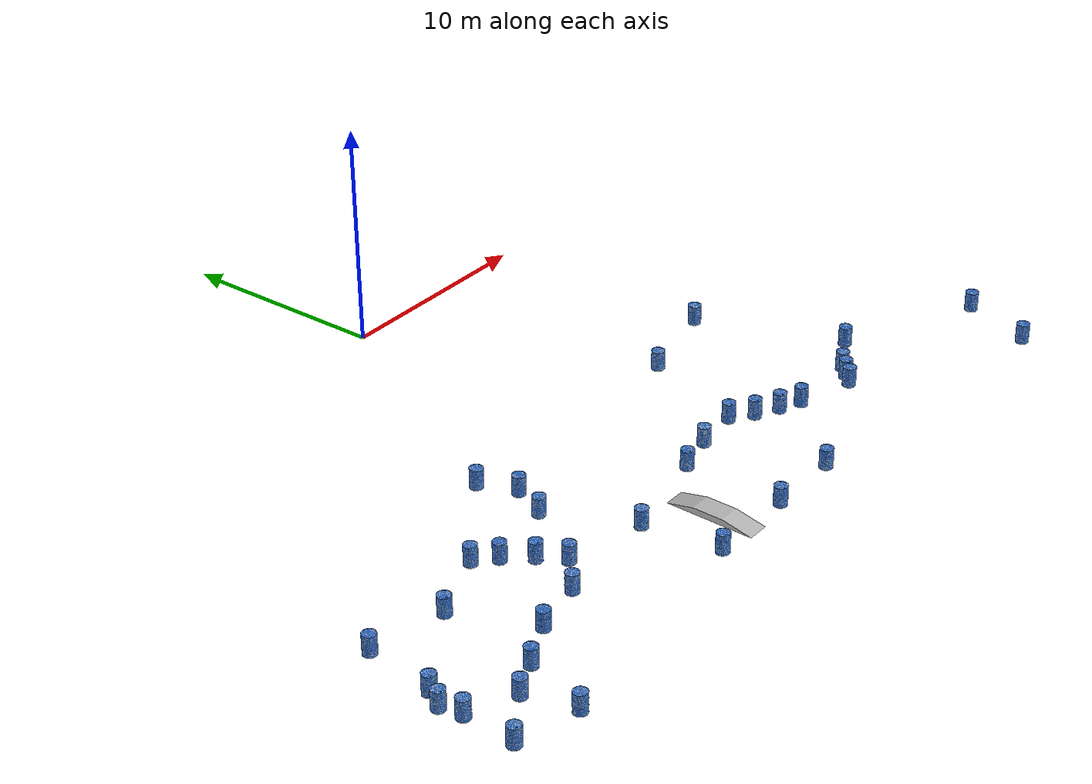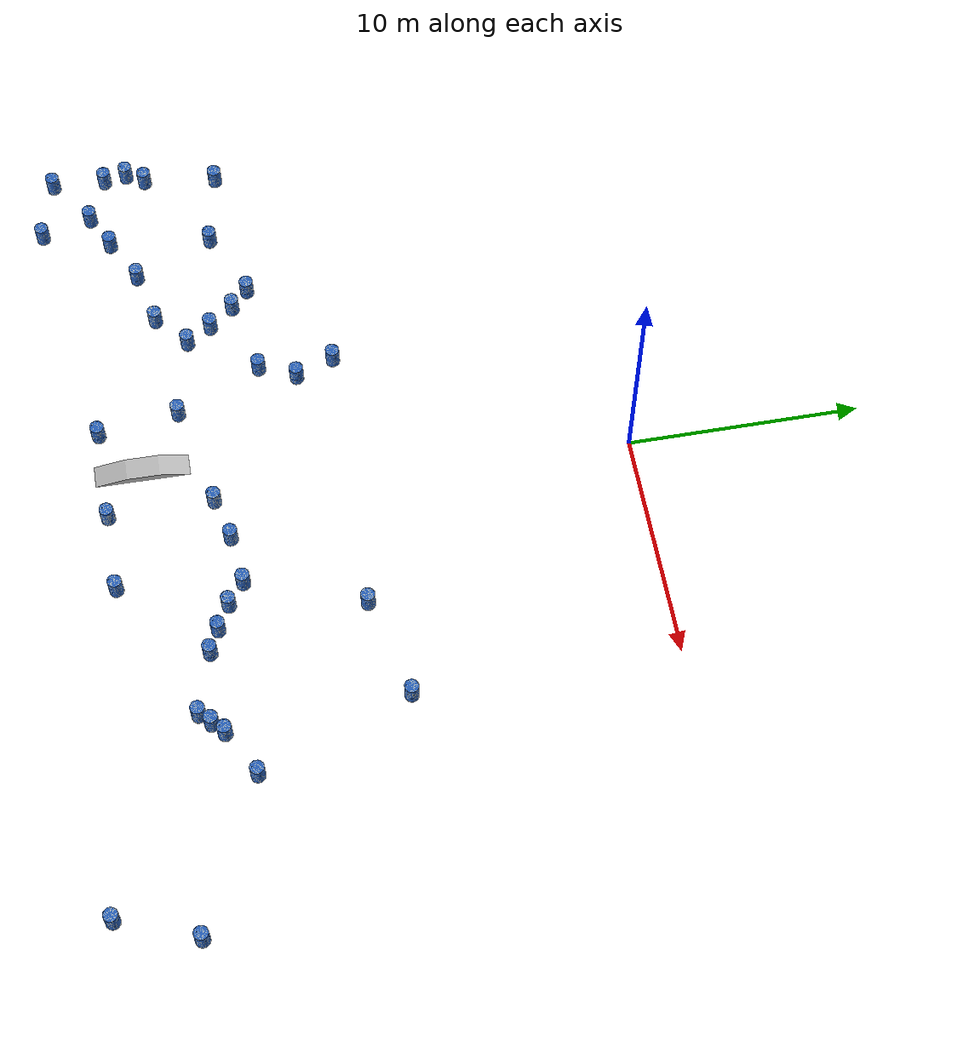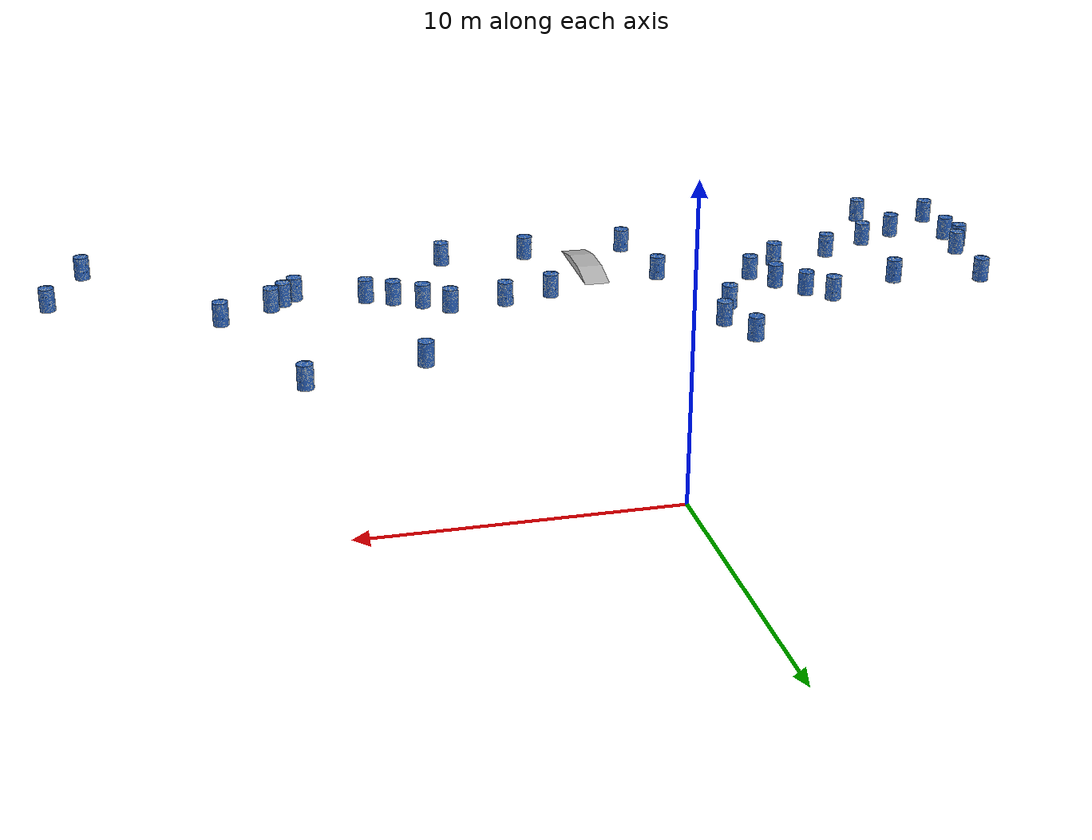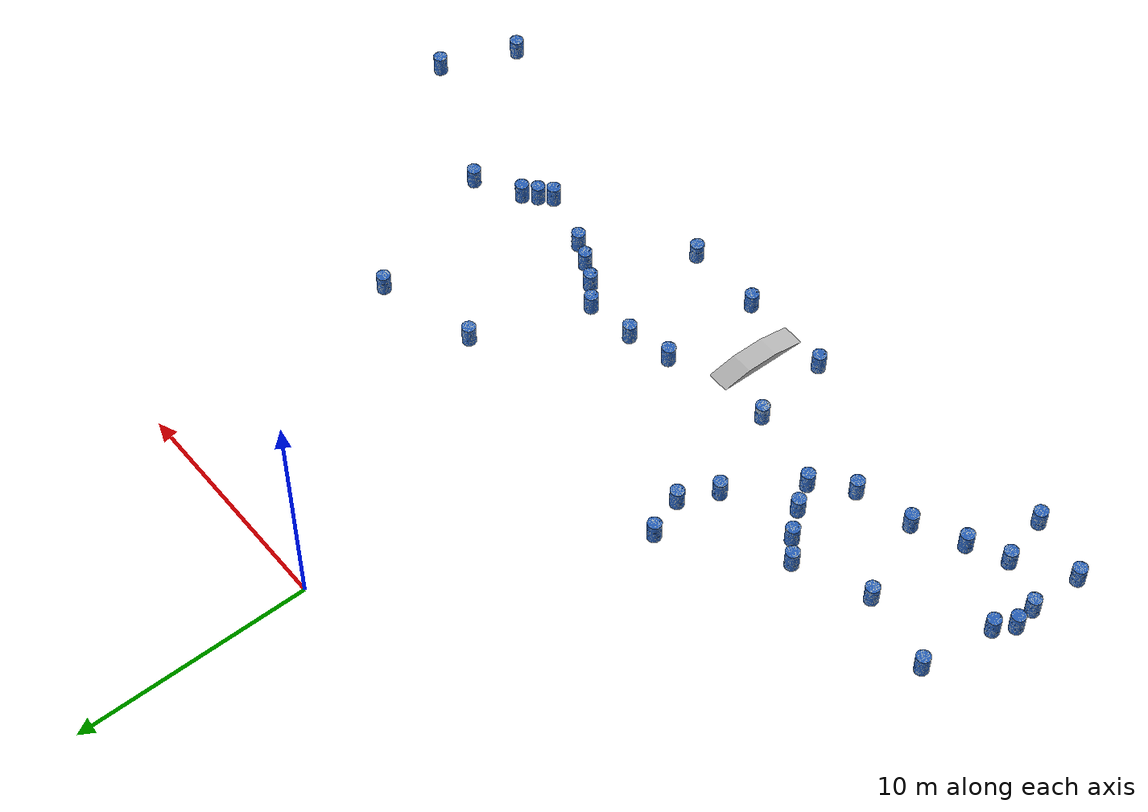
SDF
<sdf version="1.6">
 <world name="default">
  <model name="ramp_0">
   <static>1</static>
   <link name="link">
    <collision name="collision">
     <geometry><mesh><uri>model://ramp/meshes/ramp.dae</uri><scale>1 1 1</scale></mesh></geometry>
     <surface><friction><ode><mu>100</mu><mu2>50</mu2></ode></friction></surface>
    </collision>
    <visual name="visual">
     <geometry><mesh><uri>model://ramp/meshes/ramp.dae</uri><scale>1 1 1</scale></mesh></geometry>
    </visual>
   </link>
   <pose>-0.758109 -20.5547 0 0 0 -0.011926</pose>
  </model>
  <model name="barrels_low_16">
   <link name="link">
    <inertial>
     <mass>500</mass>
     <inertia><ixx>51.2096</ixx><iyy>51.2096</iyy><izz>25</izz><ixy>0</ixy><ixz>0</ixz><iyz>0</iyz></inertia>
    </inertial>
    <collision name="collision">
     <pose>0 0 0.5 0 -0 0</pose>
     <geometry><cylinder><radius>0.3</radius><length>1</length></cylinder></geometry>
    </collision>
    <visual name="visual">
     <geometry><mesh><uri>model://barrel/meshes/barrel.dae</uri><scale>1 1 1</scale></mesh></geometry>
    </visual>
   </link>
   <pose>-6.646 -12.089 -1.9e-05 0 -0 0</pose>
  </model>
  <model name="barrels_low_17">
   <link name="link">
    <inertial>
     <mass>500</mass>
     <inertia><ixx>51.2096</ixx><iyy>51.2096</iyy><izz>25</izz><ixy>0</ixy><ixz>0</ixz><iyz>0</iyz></inertia>
    </inertial>
    <collision name="collision">
     <pose>0 0 0.5 0 -0 0</pose>
     <geometry><cylinder><radius>0.3</radius><length>1</length></cylinder></geometry>
    </collision>
    <visual name="visual">
     <geometry><mesh><uri>model://barrel/meshes/barrel.dae</uri><scale>1 1 1</scale></mesh></geometry>
    </visual>
   </link>
   <pose>-6.015 -13.752 -1.9e-05 0 -0 0</pose>
  </model>
  <model name="barrels_low_24">
   <link name="link">
    <inertial>
     <mass>500</mass>
     <inertia><ixx>51.2096</ixx><iyy>51.2096</iyy><izz>25</izz><ixy>0</ixy><ixz>0</ixz><iyz>0</iyz></inertia>
    </inertial>
    <collision name="collision">
     <pose>0 0 0.5 0 -0 0</pose>
     <geometry><cylinder><radius>0.3</radius><length>1</length></cylinder></geometry>
    </collision>
    <visual name="visual">
     <geometry><mesh><uri>model://barrel/meshes/barrel.dae</uri><scale>1 1 1</scale></mesh></geometry>
    </visual>
   </link>
   <pose>18.36 -20.697 -1.9e-05 0 -0 0</pose>
  </model>
  <model name="barrels_low_25">
   <link name="link">
    <inertial>
     <mass>500</mass>
     <inertia><ixx>51.2096</ixx><iyy>51.2096</iyy><izz>25</izz><ixy>0</ixy><ixz>0</ixz><iyz>0</iyz></inertia>
    </inertial>
    <collision name="collision">
     <pose>0 0 0.5 0 -0 0</pose>
     <geometry><cylinder><radius>0.3</radius><length>1</length></cylinder></geometry>
    </collision>
    <visual name="visual">
     <geometry><mesh><uri>model://barrel/meshes/barrel.dae</uri><scale>1 1 1</scale></mesh></geometry>
    </visual>
   </link>
   <pose>17.072 -23.944 -1.9e-05 0 -0 0</pose>
  </model>
  <model name="barrels_low_26">
   <link name="link">
    <inertial>
     <mass>500</mass>
     <inertia><ixx>51.2096</ixx><iyy>51.2096</iyy><izz>25</izz><ixy>0</ixy><ixz>0</ixz><iyz>0</iyz></inertia>
    </inertial>
    <collision name="collision">
     <pose>0 0 0.5 0 -0 0</pose>
     <geometry><cylinder><radius>0.3</radius><length>1</length></cylinder></geometry>
    </collision>
    <visual name="visual">
     <geometry><mesh><uri>model://barrel/meshes/barrel.dae</uri><scale>1 1 1</scale></mesh></geometry>
    </visual>
   </link>
   <pose>12.114 -17.789 -1.9e-05 0 -0 0</pose>
  </model>
  <model name="barrels_low_27">
   <link name="link">
    <inertial>
     <mass>500</mass>
     <inertia><ixx>51.2096</ixx><iyy>51.2096</iyy><izz>25</izz><ixy>0</ixy><ixz>0</ixz><iyz>0</iyz></inertia>
    </inertial>
    <collision name="collision">
     <pose>0 0 0.5 0 -0 0</pose>
     <geometry><cylinder><radius>0.3</radius><length>1</length></cylinder></geometry>
    </collision>
    <visual name="visual">
     <geometry><mesh><uri>model://barrel/meshes/barrel.dae</uri><scale>1 1 1</scale></mesh></geometry>
    </visual>
   </link>
   <pose>10.155 -18.839 -1.9e-05 0 -0 0</pose>
  </model>
  <model name="barrels_low_28">
   <link name="link">
    <inertial>
     <mass>500</mass>
     <inertia><ixx>51.2096</ixx><iyy>51.2096</iyy><izz>25</izz><ixy>0</ixy><ixz>0</ixz><iyz>0</iyz></inertia>
    </inertial>
    <collision name="collision">
     <pose>0 0 0.5 0 -0 0</pose>
     <geometry><cylinder><radius>0.3</radius><length>1</length></cylinder></geometry>
    </collision>
    <visual name="visual">
     <geometry><mesh><uri>model://barrel/meshes/barrel.dae</uri><scale>1 1 1</scale></mesh></geometry>
    </visual>
   </link>
   <pose>9.652 -19.311 -1.9e-05 0 -0 0</pose>
  </model>
  <model name="barrels_low_29">
   <link name="link">
    <inertial>
     <mass>500</mass>
     <inertia><ixx>51.2096</ixx><iyy>51.2096</iyy><izz>25</izz><ixy>0</ixy><ixz>0</ixz><iyz>0</iyz></inertia>
    </inertial>
    <collision name="collision">
     <pose>0 0 0.5 0 -0 0</pose>
     <geometry><cylinder><radius>0.3</radius><length>1</length></cylinder></geometry>
    </collision>
    <visual name="visual">
     <geometry><mesh><uri>model://barrel/meshes/barrel.dae</uri><scale>1 1 1</scale></mesh></geometry>
    </visual>
   </link>
   <pose>9.181 -19.775 -1.9e-05 0 -0 0</pose>
  </model>
  <model name="barrels_low_30">
   <link name="link">
    <inertial>
     <mass>500</mass>
     <inertia><ixx>51.2096</ixx><iyy>51.2096</iyy><izz>25</izz><ixy>0</ixy><ixz>0</ixz><iyz>0</iyz></inertia>
    </inertial>
    <collision name="collision">
     <pose>0 0 0.5 0 -0 0</pose>
     <geometry><cylinder><radius>0.3</radius><length>1</length></cylinder></geometry>
    </collision>
    <visual name="visual">
     <geometry><mesh><uri>model://barrel/meshes/barrel.dae</uri><scale>1 1 1</scale></mesh></geometry>
    </visual>
   </link>
   <pose>9.742 -11.323 -1.9e-05 0 -0 0</pose>
  </model>
  <model name="barrels_low_31">
   <link name="link">
    <inertial>
     <mass>500</mass>
     <inertia><ixx>51.2096</ixx><iyy>51.2096</iyy><izz>25</izz><ixy>0</ixy><ixz>0</ixz><iyz>0</iyz></inertia>
    </inertial>
    <collision name="collision">
     <pose>0 0 0.5 0 -0 0</pose>
     <geometry><cylinder><radius>0.3</radius><length>1</length></cylinder></geometry>
    </collision>
    <visual name="visual">
     <geometry><mesh><uri>model://barrel/meshes/barrel.dae</uri><scale>1 1 1</scale></mesh></geometry>
    </visual>
   </link>
   <pose>5.393 -12.401 -1.9e-05 0 -0 0</pose>
  </model>
  <model name="barrels_low_51">
   <link name="link">
    <inertial>
     <mass>500</mass>
     <inertia><ixx>51.2096</ixx><iyy>51.2096</iyy><izz>25</izz><ixy>0</ixy><ixz>0</ixz><iyz>0</iyz></inertia>
    </inertial>
    <collision name="collision">
     <pose>0 0 0.5 0 -0 0</pose>
     <geometry><cylinder><radius>0.3</radius><length>1</length></cylinder></geometry>
    </collision>
    <visual name="visual">
     <geometry><mesh><uri>model://barrel/meshes/barrel.dae</uri><scale>1 1 1</scale></mesh></geometry>
    </visual>
   </link>
   <pose>-6.728 -15.316 -1.9e-05 0 -0 0</pose>
  </model>
  <model name="barrels_low_52">
   <link name="link">
    <inertial>
     <mass>500</mass>
     <inertia><ixx>51.2096</ixx><iyy>51.2096</iyy><izz>25</izz><ixy>0</ixy><ixz>0</ixz><iyz>0</iyz></inertia>
    </inertial>
    <collision name="collision">
     <pose>0 0 0.5 0 -0 0</pose>
     <geometry><cylinder><radius>0.3</radius><length>1</length></cylinder></geometry>
    </collision>
    <visual name="visual">
     <geometry><mesh><uri>model://barrel/meshes/barrel.dae</uri><scale>1 1 1</scale></mesh></geometry>
    </visual>
   </link>
   <pose>-10.898 -15.301 -1.9e-05 0 -0 0</pose>
  </model>
  <model name="barrels_low_53">
   <link name="link">
    <inertial>
     <mass>500</mass>
     <inertia><ixx>51.2096</ixx><iyy>51.2096</iyy><izz>25</izz><ixy>0</ixy><ixz>0</ixz><iyz>0</iyz></inertia>
    </inertial>
    <collision name="collision">
     <pose>0 0 0.5 0 -0 0</pose>
     <geometry><cylinder><radius>0.3</radius><length>1</length></cylinder></geometry>
    </collision>
    <visual name="visual">
     <geometry><mesh><uri>model://barrel/meshes/barrel.dae</uri><scale>1 1 1</scale></mesh></geometry>
    </visual>
   </link>
   <pose>-10.073 -16.053 -1.9e-05 0 -0 0</pose>
  </model>
  <model name="barrels_low_54">
   <link name="link">
    <inertial>
     <mass>500</mass>
     <inertia><ixx>51.2096</ixx><iyy>51.2096</iyy><izz>25</izz><ixy>0</ixy><ixz>0</ixz><iyz>0</iyz></inertia>
    </inertial>
    <collision name="collision">
     <pose>0 0 0.5 0 -0 0</pose>
     <geometry><cylinder><radius>0.3</radius><length>1</length></cylinder></geometry>
    </collision>
    <visual name="visual">
     <geometry><mesh><uri>model://barrel/meshes/barrel.dae</uri><scale>1 1 1</scale></mesh></geometry>
    </visual>
   </link>
   <pose>-9.219 -17.113 -1.9e-05 0 -0 0</pose>
  </model>
  <model name="barrels_low_55">
   <link name="link">
    <inertial>
     <mass>500</mass>
     <inertia><ixx>51.2096</ixx><iyy>51.2096</iyy><izz>25</izz><ixy>0</ixy><ixz>0</ixz><iyz>0</iyz></inertia>
    </inertial>
    <collision name="collision">
     <pose>0 0 0.5 0 -0 0</pose>
     <geometry><cylinder><radius>0.3</radius><length>1</length></cylinder></geometry>
    </collision>
    <visual name="visual">
     <geometry><mesh><uri>model://barrel/meshes/barrel.dae</uri><scale>1 1 1</scale></mesh></geometry>
    </visual>
   </link>
   <pose>-8.555 -18.197 -1.9e-05 0 -0 0</pose>
  </model>
  <model name="barrels_low_60">
   <link name="link">
    <inertial>
     <mass>500</mass>
     <inertia><ixx>51.2096</ixx><iyy>51.2096</iyy><izz>25</izz><ixy>0</ixy><ixz>0</ixz><iyz>0</iyz></inertia>
    </inertial>
    <collision name="collision">
     <pose>0 0 0.5 0 -0 0</pose>
     <geometry><cylinder><radius>0.3</radius><length>1</length></cylinder></geometry>
    </collision>
    <visual name="visual">
     <geometry><mesh><uri>model://barrel/meshes/barrel.dae</uri><scale>1 1 1</scale></mesh></geometry>
    </visual>
   </link>
   <pose>-16.001 -21.75 -1.9e-05 0 -0 0</pose>
  </model>
  <model name="barrels_low_61">
   <link name="link">
    <inertial>
     <mass>500</mass>
     <inertia><ixx>51.2096</ixx><iyy>51.2096</iyy><izz>25</izz><ixy>0</ixy><ixz>0</ixz><iyz>0</iyz></inertia>
    </inertial>
    <collision name="collision">
     <pose>0 0 0.5 0 -0 0</pose>
     <geometry><cylinder><radius>0.3</radius><length>1</length></cylinder></geometry>
    </collision>
    <visual name="visual">
     <geometry><mesh><uri>model://barrel/meshes/barrel.dae</uri><scale>1 1 1</scale></mesh></geometry>
    </visual>
   </link>
   <pose>-15.407 -23.926 -1.9e-05 0 -0 0</pose>
  </model>
  <model name="barrels_low_62">
   <link name="link">
    <inertial>
     <mass>500</mass>
     <inertia><ixx>51.2096</ixx><iyy>51.2096</iyy><izz>25</izz><ixy>0</ixy><ixz>0</ixz><iyz>0</iyz></inertia>
    </inertial>
    <collision name="collision">
     <pose>0 0 0.5 0 -0 0</pose>
     <geometry><cylinder><radius>0.3</radius><length>1</length></cylinder></geometry>
    </collision>
    <visual name="visual">
     <geometry><mesh><uri>model://barrel/meshes/barrel.dae</uri><scale>1 1 1</scale></mesh></geometry>
    </visual>
   </link>
   <pose>-18.16 -23.218 -1.9e-05 0 -0 0</pose>
  </model>
  <model name="barrels_low_63">
   <link name="link">
    <inertial>
     <mass>500</mass>
     <inertia><ixx>51.2096</ixx><iyy>51.2096</iyy><izz>25</izz><ixy>0</ixy><ixz>0</ixz><iyz>0</iyz></inertia>
    </inertial>
    <collision name="collision">
     <pose>0 0 0.5 0 -0 0</pose>
     <geometry><cylinder><radius>0.3</radius><length>1</length></cylinder></geometry>
    </collision>
    <visual name="visual">
     <geometry><mesh><uri>model://barrel/meshes/barrel.dae</uri><scale>1 1 1</scale></mesh></geometry>
    </visual>
   </link>
   <pose>-18.069 -20.91 -1.9e-05 0 -0 0</pose>
  </model>
  <model name="barrels_low_64">
   <link name="link">
    <inertial>
     <mass>500</mass>
     <inertia><ixx>51.2096</ixx><iyy>51.2096</iyy><izz>25</izz><ixy>0</ixy><ixz>0</ixz><iyz>0</iyz></inertia>
    </inertial>
    <collision name="collision">
     <pose>0 0 0.5 0 -0 0</pose>
     <geometry><cylinder><radius>0.3</radius><length>1</length></cylinder></geometry>
    </collision>
    <visual name="visual">
     <geometry><mesh><uri>model://barrel/meshes/barrel.dae</uri><scale>1 1 1</scale></mesh></geometry>
    </visual>
   </link>
   <pose>-18.222 -19.921 -1.9e-05 0 -0 0</pose>
  </model>
  <model name="barrels_low_65">
   <link name="link">
    <inertial>
     <mass>500</mass>
     <inertia><ixx>51.2096</ixx><iyy>51.2096</iyy><izz>25</izz><ixy>0</ixy><ixz>0</ixz><iyz>0</iyz></inertia>
    </inertial>
    <collision name="collision">
     <pose>0 0 0.5 0 -0 0</pose>
     <geometry><cylinder><radius>0.3</radius><length>1</length></cylinder></geometry>
    </collision>
    <visual name="visual">
     <geometry><mesh><uri>model://barrel/meshes/barrel.dae</uri><scale>1 1 1</scale></mesh></geometry>
    </visual>
   </link>
   <pose>-17.763 -19.123 -1.9e-05 0 -0 0</pose>
  </model>
  <model name="barrels_low_67">
   <link name="link">
    <inertial>
     <mass>500</mass>
     <inertia><ixx>51.2096</ixx><iyy>51.2096</iyy><izz>25</izz><ixy>0</ixy><ixz>0</ixz><iyz>0</iyz></inertia>
    </inertial>
    <collision name="collision">
     <pose>0 0 0.5 0 -0 0</pose>
     <geometry><cylinder><radius>0.3</radius><length>1</length></cylinder></geometry>
    </collision>
    <visual name="visual">
     <geometry><mesh><uri>model://barrel/meshes/barrel.dae</uri><scale>1 1 1</scale></mesh></geometry>
    </visual>
   </link>
   <pose>-17.311 -15.951 -1.9e-05 0 -0 0</pose>
  </model>
  <model name="barrels_low_69">
   <link name="link">
    <inertial>
     <mass>500</mass>
     <inertia><ixx>51.2096</ixx><iyy>51.2096</iyy><izz>25</izz><ixy>0</ixy><ixz>0</ixz><iyz>0</iyz></inertia>
    </inertial>
    <collision name="collision">
     <pose>0 0 0.5 0 -0 0</pose>
     <geometry><cylinder><radius>0.3</radius><length>1</length></cylinder></geometry>
    </collision>
    <visual name="visual">
     <geometry><mesh><uri>model://barrel/meshes/barrel.dae</uri><scale>1 1 1</scale></mesh></geometry>
    </visual>
   </link>
   <pose>-13.932 -16.579 -1.9e-05 0 -0 0</pose>
  </model>
  <model name="barrels_low_51_clone">
   <link name="link">
    <inertial>
     <mass>500</mass>
     <inertia><ixx>51.2096</ixx><iyy>51.2096</iyy><izz>25</izz><ixy>0</ixy><ixz>0</ixz><iyz>0</iyz></inertia>
    </inertial>
    <collision name="collision">
     <pose>0 0 0.5 0 -0 0</pose>
     <geometry><cylinder><radius>0.3</radius><length>1</length></cylinder></geometry>
    </collision>
    <visual name="visual">
     <geometry><mesh><uri>model://barrel/meshes/barrel.dae</uri><scale>1 1 1</scale></mesh></geometry>
    </visual>
   </link>
   <pose>3.60001 -17.2968 -2e-05 0 -0 0</pose>
  </model>
  <model name="barrels_low_51_clone_0">
   <link name="link">
    <inertial>
     <mass>500</mass>
     <inertia><ixx>51.2096</ixx><iyy>51.2096</iyy><izz>25</izz><ixy>0</ixy><ixz>0</ixz><iyz>0</iyz></inertia>
    </inertial>
    <collision name="collision">
     <pose>0 0 0.5 0 -0 0</pose>
     <geometry><cylinder><radius>0.3</radius><length>1</length></cylinder></geometry>
    </collision>
    <visual name="visual">
     <geometry><mesh><uri>model://barrel/meshes/barrel.dae</uri><scale>1 1 1</scale></mesh></geometry>
    </visual>
   </link>
   <pose>4.52881 -18 -2e-05 0 -0 0</pose>
  </model>
  <model name="barrels_low_51_clone_1">
   <link name="link">
    <inertial>
     <mass>500</mass>
     <inertia><ixx>51.2096</ixx><iyy>51.2096</iyy><izz>25</izz><ixy>0</ixy><ixz>0</ixz><iyz>0</iyz></inertia>
    </inertial>
    <collision name="collision">
     <pose>0 0 0.5 0 -0 0</pose>
     <geometry><cylinder><radius>0.3</radius><length>1</length></cylinder></geometry>
    </collision>
    <visual name="visual">
     <geometry><mesh><uri>model://barrel/meshes/barrel.dae</uri><scale>1 1 1</scale></mesh></geometry>
    </visual>
   </link>
   <pose>5.56969 -18.5579 -2e-05 0 -0 0</pose>
  </model>
  <model name="barrels_low_51_clone_2">
   <link name="link">
    <inertial>
     <mass>500</mass>
     <inertia><ixx>51.2096</ixx><iyy>51.2096</iyy><izz>25</izz><ixy>0</ixy><ixz>0</ixz><iyz>0</iyz></inertia>
    </inertial>
    <collision name="collision">
     <pose>0 0 0.5 0 -0 0</pose>
     <geometry><cylinder><radius>0.3</radius><length>1</length></cylinder></geometry>
    </collision>
    <visual name="visual">
     <geometry><mesh><uri>model://barrel/meshes/barrel.dae</uri><scale>1 1 1</scale></mesh></geometry>
    </visual>
   </link>
   <pose>6.55426 -19 -1.9e-05 0 -0 0</pose>
  </model>
  <model name="barrels_low_51_clone_3">
   <link name="link">
    <inertial>
     <mass>500</mass>
     <inertia><ixx>51.2096</ixx><iyy>51.2096</iyy><izz>25</izz><ixy>0</ixy><ixz>0</ixz><iyz>0</iyz></inertia>
    </inertial>
    <collision name="collision">
     <pose>0 0 0.5 0 -0 0</pose>
     <geometry><cylinder><radius>0.3</radius><length>1</length></cylinder></geometry>
    </collision>
    <visual name="visual">
     <geometry><mesh><uri>model://barrel/meshes/barrel.dae</uri><scale>1 1 1</scale></mesh></geometry>
    </visual>
   </link>
   <pose>-0.450049 -18 -1.9e-05 0 -0 0</pose>
  </model>
  <model name="barrels_low_51_clone_4">
   <link name="link">
    <inertial>
     <mass>500</mass>
     <inertia><ixx>51.2096</ixx><iyy>51.2096</iyy><izz>25</izz><ixy>0</ixy><ixz>0</ixz><iyz>0</iyz></inertia>
    </inertial>
    <collision name="collision">
     <pose>0 0 0.5 0 -0 0</pose>
     <geometry><cylinder><radius>0.3</radius><length>1</length></cylinder></geometry>
    </collision>
    <visual name="visual">
     <geometry><mesh><uri>model://barrel/meshes/barrel.dae</uri><scale>1 1 1</scale></mesh></geometry>
    </visual>
   </link>
   <pose>-5 -19 -2e-05 0 -0 0</pose>
  </model>
  <model name="barrels_low_51_clone_5">
   <link name="link">
    <inertial>
     <mass>500</mass>
     <inertia><ixx>51.2096</ixx><iyy>51.2096</iyy><izz>25</izz><ixy>0</ixy><ixz>0</ixz><iyz>0</iyz></inertia>
    </inertial>
    <collision name="collision">
     <pose>0 0 0.5 0 -0 0</pose>
     <geometry><cylinder><radius>0.3</radius><length>1</length></cylinder></geometry>
    </collision>
    <visual name="visual">
     <geometry><mesh><uri>model://barrel/meshes/barrel.dae</uri><scale>1 1 1</scale></mesh></geometry>
    </visual>
   </link>
   <pose>-10 -19.4465 -1.9e-05 0 -0 0</pose>
  </model>
  <model name="barrels_low_51_clone_6">
   <link name="link">
    <inertial>
     <mass>500</mass>
     <inertia><ixx>51.2096</ixx><iyy>51.2096</iyy><izz>25</izz><ixy>0</ixy><ixz>0</ixz><iyz>0</iyz></inertia>
    </inertial>
    <collision name="collision">
     <pose>0 0 0.5 0 -0 0</pose>
     <geometry><cylinder><radius>0.3</radius><length>1</length></cylinder></geometry>
    </collision>
    <visual name="visual">
     <geometry><mesh><uri>model://barrel/meshes/barrel.dae</uri><scale>1 1 1</scale></mesh></geometry>
    </visual>
   </link>
   <pose>-12.4407 -20 -2e-05 0 -0 0</pose>
  </model>
  <model name="barrels_low_51_clone_7">
   <link name="link">
    <inertial>
     <mass>500</mass>
     <inertia><ixx>51.2096</ixx><iyy>51.2096</iyy><izz>25</izz><ixy>0</ixy><ixz>0</ixz><iyz>0</iyz></inertia>
    </inertial>
    <collision name="collision">
     <pose>0 0 0.5 0 -0 0</pose>
     <geometry><cylinder><radius>0.3</radius><length>1</length></cylinder></geometry>
    </collision>
    <visual name="visual">
     <geometry><mesh><uri>model://barrel/meshes/barrel.dae</uri><scale>1 1 1</scale></mesh></geometry>
    </visual>
   </link>
   <pose>-14.4264 -21 -2e-05 0 -0 0</pose>
  </model>
  <model name="barrels_low_51_clone_8">
   <link name="link">
    <inertial>
     <mass>500</mass>
     <inertia><ixx>51.2096</ixx><iyy>51.2096</iyy><izz>25</izz><ixy>0</ixy><ixz>0</ixz><iyz>0</iyz></inertia>
    </inertial>
    <collision name="collision">
     <pose>0 0 0.5 0 -0 0</pose>
     <geometry><cylinder><radius>0.3</radius><length>1</length></cylinder></geometry>
    </collision>
    <visual name="visual">
     <geometry><mesh><uri>model://barrel/meshes/barrel.dae</uri><scale>1 1 1</scale></mesh></geometry>
    </visual>
   </link>
   <pose>-0.424682 -22.4485 -1.9e-05 0 -0 0</pose>
  </model>
  <model name="barrels_low_51_clone_9">
   <link name="link">
    <inertial>
     <mass>500</mass>
     <inertia><ixx>51.2096</ixx><iyy>51.2096</iyy><izz>25</izz><ixy>0</ixy><ixz>0</ixz><iyz>0</iyz></inertia>
    </inertial>
    <collision name="collision">
     <pose>0 0 0.5 0 -0 0</pose>
     <geometry><cylinder><radius>0.3</radius><length>1</length></cylinder></geometry>
    </collision>
    <visual name="visual">
     <geometry><mesh><uri>model://barrel/meshes/barrel.dae</uri><scale>1 1 1</scale></mesh></geometry>
    </visual>
   </link>
   <pose>1.43616 -17.533 -1.9e-05 0 -0 0</pose>
  </model>
  <model name="barrels_low_51_clone_10">
   <link name="link">
    <inertial>
     <mass>500</mass>
     <inertia><ixx>51.2096</ixx><iyy>51.2096</iyy><izz>25</izz><ixy>0</ixy><ixz>0</ixz><iyz>0</iyz></inertia>
    </inertial>
    <collision name="collision">
     <pose>0 0 0.5 0 -0 0</pose>
     <geometry><cylinder><radius>0.3</radius><length>1</length></cylinder></geometry>
    </collision>
    <visual name="visual">
     <geometry><mesh><uri>model://barrel/meshes/barrel.dae</uri><scale>1 1 1</scale></mesh></geometry>
    </visual>
   </link>
   <pose>3 -22.4373 -2e-05 0 -0 0</pose>
  </model>
  <model name="barrels_low_51_clone_11">
   <link name="link">
    <inertial>
     <mass>500</mass>
     <inertia><ixx>51.2096</ixx><iyy>51.2096</iyy><izz>25</izz><ixy>0</ixy><ixz>0</ixz><iyz>0</iyz></inertia>
    </inertial>
    <collision name="collision">
     <pose>0 0 0.5 0 -0 0</pose>
     <geometry><cylinder><radius>0.3</radius><length>1</length></cylinder></geometry>
    </collision>
    <visual name="visual">
     <geometry><mesh><uri>model://barrel/meshes/barrel.dae</uri><scale>1 1 1</scale></mesh></geometry>
    </visual>
   </link>
   <pose>-4.4939 -22.4597 -1.9e-05 0 -0 0</pose>
  </model>
 </world>
</sdf>
